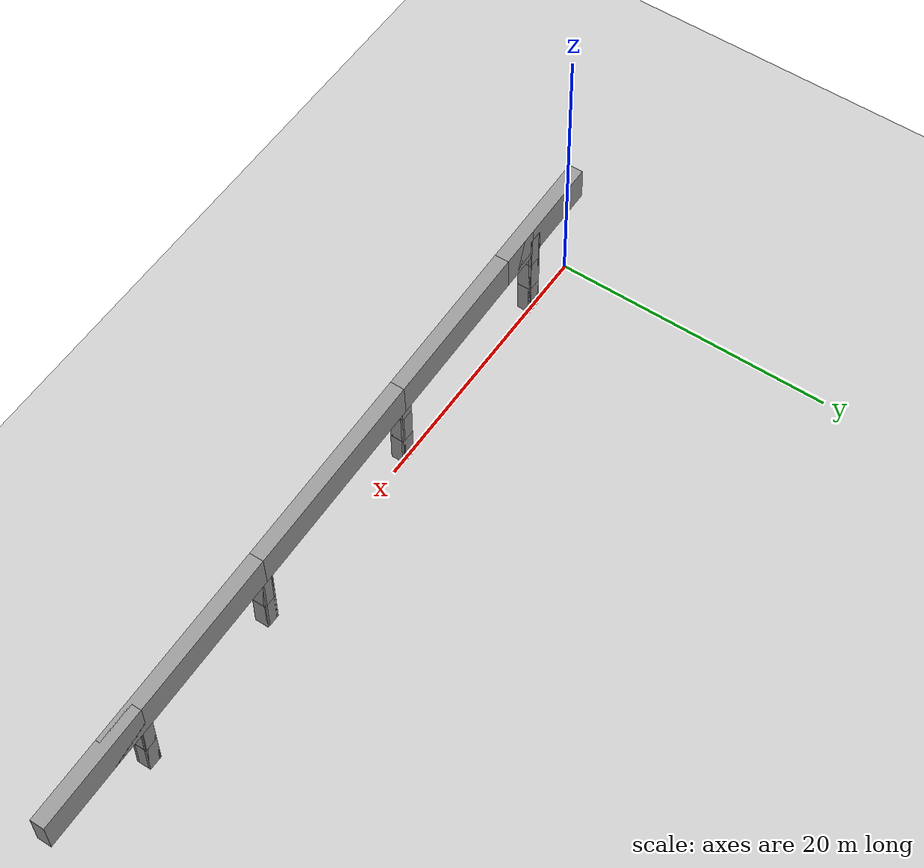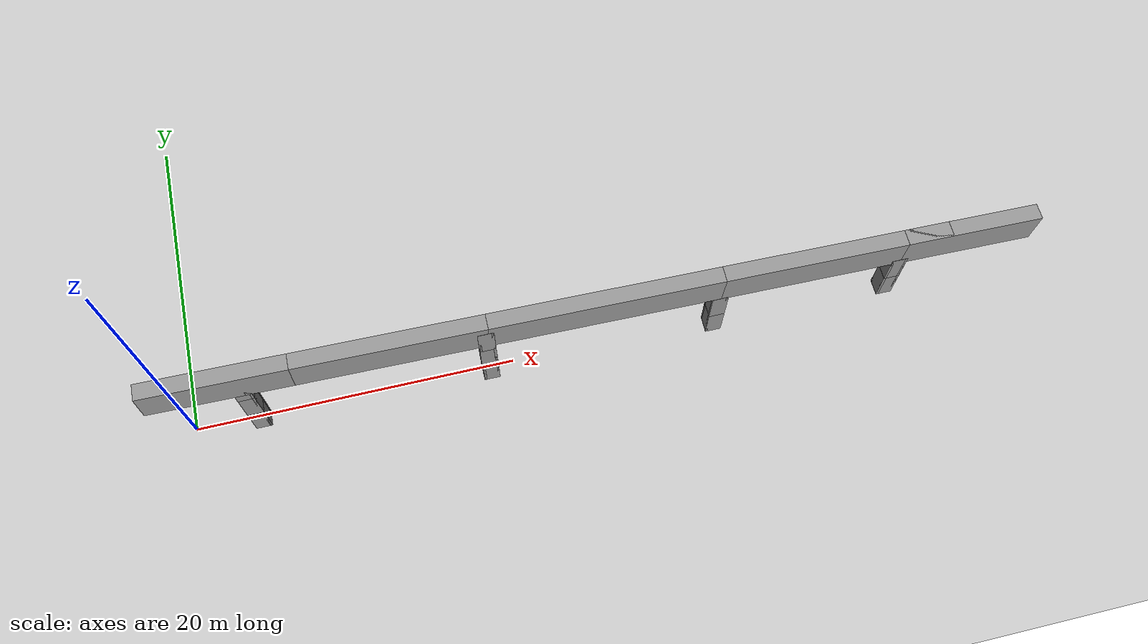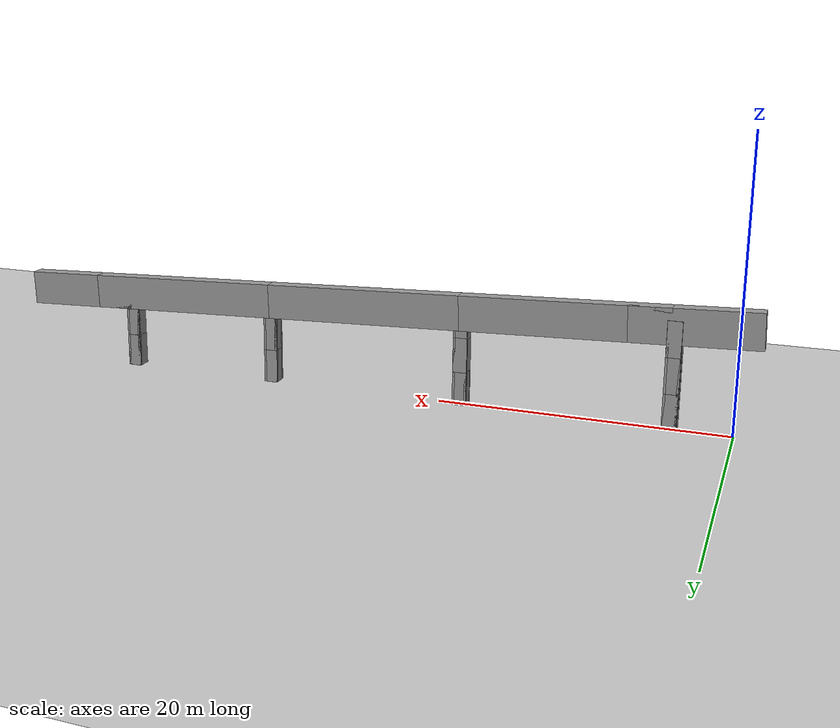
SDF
<sdf version="1.6">
 <world name="default">
  <light name="sun" type="directional">
   <pose>0 0 10 0 -0 0</pose>
   <diffuse>0.8 0.8 0.8 1</diffuse>
   <specular>0.1 0.1 0.1 1</specular>
   <attenuation>
    <range>1000</range>
    <constant>0.9</constant>
    <linear>0.01</linear>
    <quadratic>0.001</quadratic>
   </attenuation>
   <direction>-0.5 0.5 -1</direction>
  </light>
  <model name="ground_plane">
   <static>1</static>
   <link name="link">
    <collision name="collision">
     <geometry><plane><normal>0 0 1</normal><size>100 100</size></plane></geometry>
     <surface><friction><ode><mu>100</mu><mu2>50</mu2></ode></friction></surface>
    </collision>
    <visual name="visual">
     <cast_shadows>0</cast_shadows>
     <geometry><plane><normal>0 0 1</normal><size>100 100</size></plane></geometry>
     <material>
      <script><uri>file://media/materials/scripts/gazebo.material</uri><name>Gazebo/Grey</name></script>
     </material>
    </visual>
   </link>
  </model>
  <gravity>0 0 -9.8</gravity>
  <magnetic_field>6e-06 2.3e-05 -4.2e-05</magnetic_field>
  <atmosphere type="adiabatic"/>
  <physics name="default_physics" default="0" type="ode">
   <max_step_size>0.001</max_step_size>
   <real_time_factor>1</real_time_factor>
   <real_time_update_rate>1000</real_time_update_rate>
  </physics>
  <scene><ambient>0.4 0.4 0.4 1</ambient><background>0.7 0.7 0.7 1</background><shadows>1</shadows></scene>
  <spherical_coordinates>
   <surface_model>EARTH_WGS84</surface_model>
   <latitude_deg>0</latitude_deg>
   <longitude_deg>0</longitude_deg>
   <elevation>0</elevation>
   <heading_deg>0</heading_deg>
  </spherical_coordinates>
  <model name="girder">
   <pose>27.7721 -0.330615 5.01209 0 0.035932 0</pose>
   <link name="Wall_1">
    <collision name="Wall_1_Collision">
     <geometry><box><size>8.65 1 2.5</size></box></geometry>
     <pose>0 0 1.25 0 -0 0</pose>
    </collision>
    <visual name="Wall_1_Visual">
     <pose>0 0 1.25 0 -0 0</pose>
     <geometry><box><size>8.65 1 2.5</size></box></geometry>
     <material>
      <script><uri>file://media/materials/scripts/gazebo.material</uri><name>Gazebo/Grey</name></script>
      <ambient>1 1 1 1</ambient>
     </material>
    </visual>
    <pose>-25 0 0 0 -0 0</pose>
   </link>
   <link name="Wall_3">
    <collision name="Wall_3_Collision">
     <geometry><box><size>14.4 1 2.5</size></box></geometry>
     <pose>0 0 1.25 0 -0 0</pose>
    </collision>
    <visual name="Wall_3_Visual">
     <pose>0 0 1.25 0 -0 0</pose>
     <geometry><box><size>14.4 1 2.5</size></box></geometry>
     <material>
      <script><uri>file://media/materials/scripts/gazebo.material</uri><name>Gazebo/Grey</name></script>
      <ambient>1 1 1 1</ambient>
     </material>
    </visual>
    <pose>-16.35 0 0 0 -0 0</pose>
   </link>
   <link name="Wall_5">
    <collision name="Wall_5_Collision">
     <geometry><box><size>14.4 1 2.5</size></box></geometry>
     <pose>0 0 1.25 0 -0 0</pose>
    </collision>
    <visual name="Wall_5_Visual">
     <pose>0 0 1.25 0 -0 0</pose>
     <geometry><box><size>14.4 1 2.5</size></box></geometry>
     <material>
      <script><uri>file://media/materials/scripts/gazebo.material</uri><name>Gazebo/Grey</name></script>
      <ambient>1 1 1 1</ambient>
     </material>
    </visual>
    <pose>-1.95 0 0 0 -0 0</pose>
   </link>
   <link name="Wall_7">
    <collision name="Wall_7_Collision">
     <geometry><box><size>14.4 1 2.5</size></box></geometry>
     <pose>0 0 1.25 0 -0 0</pose>
    </collision>
    <visual name="Wall_7_Visual">
     <pose>0 0 1.25 0 -0 0</pose>
     <geometry><box><size>14.4 1 2.5</size></box></geometry>
     <material>
      <script><uri>file://media/materials/scripts/gazebo.material</uri><name>Gazebo/Grey</name></script>
      <ambient>1 1 1 1</ambient>
     </material>
    </visual>
    <pose>12.45 0 0 0 -0 0</pose>
   </link>
   <link name="Wall_9">
    <collision name="Wall_9_Collision">
     <geometry><box><size>8.65 1 2.5</size></box></geometry>
     <pose>0 0 1.25 0 -0 0</pose>
    </collision>
    <visual name="Wall_9_Visual">
     <pose>0 0 1.25 0 -0 0</pose>
     <geometry><box><size>8.65 1 2.5</size></box></geometry>
     <material>
      <script><uri>file://media/materials/scripts/gazebo.material</uri><name>Gazebo/Grey</name></script>
      <ambient>1 1 1 1</ambient>
     </material>
    </visual>
    <pose>21.1 0 0 0 -0 0</pose>
   </link>
   <static>1</static>
  </model>
  <model name="column">
   <pose>4.09198 -0.291753 0.01209 0 -0 0</pose>
   <link name="Wall_0">
    <collision name="Wall_0_Collision">
     <geometry><box><size>1 0.15 2.5</size></box></geometry>
     <pose>0 0 1.25 0 -0 0</pose>
    </collision>
    <visual name="Wall_0_Visual">
     <pose>0 0 1.25 0 -0 0</pose>
     <geometry><box><size>1 0.15 2.5</size></box></geometry>
     <material>
      <script><uri>file://media/materials/scripts/gazebo.material</uri><name>Gazebo/Grey</name></script>
      <ambient>1 1 1 1</ambient>
     </material>
    </visual>
    <pose>0 -0.425 0 0 -0 0</pose>
   </link>
   <link name="Wall_1">
    <collision name="Wall_1_Collision">
     <geometry><box><size>1 0.15 2.5</size></box></geometry>
     <pose>0 0 1.25 0 -0 0</pose>
    </collision>
    <visual name="Wall_1_Visual">
     <pose>0 0 1.25 0 -0 0</pose>
     <geometry><box><size>1 0.15 2.5</size></box></geometry>
     <material>
      <script><uri>file://media/materials/scripts/gazebo.material</uri><name>Gazebo/Grey</name></script>
      <ambient>1 1 1 1</ambient>
     </material>
    </visual>
    <pose>0.425 0 0 0 -0 1.5708</pose>
   </link>
   <link name="Wall_2">
    <collision name="Wall_2_Collision">
     <geometry><box><size>1 0.15 2.5</size></box></geometry>
     <pose>0 0 1.25 0 -0 0</pose>
    </collision>
    <visual name="Wall_2_Visual">
     <pose>0 0 1.25 0 -0 0</pose>
     <geometry><box><size>1 0.15 2.5</size></box></geometry>
     <material>
      <script><uri>file://media/materials/scripts/gazebo.material</uri><name>Gazebo/Grey</name></script>
      <ambient>1 1 1 1</ambient>
     </material>
    </visual>
    <pose>0 0.425 0 0 -0 3.14159</pose>
   </link>
   <link name="Wall_3">
    <collision name="Wall_3_Collision">
     <geometry><box><size>1 0.15 2.5</size></box></geometry>
     <pose>0 0 1.25 0 -0 0</pose>
    </collision>
    <visual name="Wall_3_Visual">
     <pose>0 0 1.25 0 -0 0</pose>
     <geometry><box><size>1 0.15 2.5</size></box></geometry>
     <material>
      <script><uri>file://media/materials/scripts/gazebo.material</uri><name>Gazebo/Grey</name></script>
      <ambient>1 1 1 1</ambient>
     </material>
    </visual>
    <pose>-0.425 0 0 0 0 -1.5708</pose>
   </link>
   <static>1</static>
  </model>
  <model name="column_clone">
   <pose>4.09198 -0.291753 2.51209 0 -0 0</pose>
   <link name="Wall_0">
    <collision name="Wall_0_Collision">
     <geometry><box><size>1 0.15 2.5</size></box></geometry>
     <pose>0 0 1.25 0 -0 0</pose>
    </collision>
    <visual name="Wall_0_Visual">
     <pose>0 0 1.25 0 -0 0</pose>
     <geometry><box><size>1 0.15 2.5</size></box></geometry>
     <material>
      <script><uri>file://media/materials/scripts/gazebo.material</uri><name>Gazebo/Grey</name></script>
      <ambient>1 1 1 1</ambient>
     </material>
    </visual>
    <pose>0 -0.425 0 0 -0 0</pose>
   </link>
   <link name="Wall_1">
    <collision name="Wall_1_Collision">
     <geometry><box><size>1 0.15 2.5</size></box></geometry>
     <pose>0 0 1.25 0 -0 0</pose>
    </collision>
    <visual name="Wall_1_Visual">
     <pose>0 0 1.25 0 -0 0</pose>
     <geometry><box><size>1 0.15 2.5</size></box></geometry>
     <material>
      <script><uri>file://media/materials/scripts/gazebo.material</uri><name>Gazebo/Grey</name></script>
      <ambient>1 1 1 1</ambient>
     </material>
    </visual>
    <pose>0.425 0 0 0 -0 1.5708</pose>
   </link>
   <link name="Wall_2">
    <collision name="Wall_2_Collision">
     <geometry><box><size>1 0.15 2.5</size></box></geometry>
     <pose>0 0 1.25 0 -0 0</pose>
    </collision>
    <visual name="Wall_2_Visual">
     <pose>0 0 1.25 0 -0 0</pose>
     <geometry><box><size>1 0.15 2.5</size></box></geometry>
     <material>
      <script><uri>file://media/materials/scripts/gazebo.material</uri><name>Gazebo/Grey</name></script>
      <ambient>1 1 1 1</ambient>
     </material>
    </visual>
    <pose>0 0.425 0 0 -0 3.14159</pose>
   </link>
   <link name="Wall_3">
    <collision name="Wall_3_Collision">
     <geometry><box><size>1 0.15 2.5</size></box></geometry>
     <pose>0 0 1.25 0 -0 0</pose>
    </collision>
    <visual name="Wall_3_Visual">
     <pose>0 0 1.25 0 -0 0</pose>
     <geometry><box><size>1 0.15 2.5</size></box></geometry>
     <material>
      <script><uri>file://media/materials/scripts/gazebo.material</uri><name>Gazebo/Grey</name></script>
      <ambient>1 1 1 1</ambient>
     </material>
    </visual>
    <pose>-0.425 0 0 0 0 -1.5708</pose>
   </link>
   <static>1</static>
  </model>
  <model name="column_clone_0">
   <pose>4.09198 -0.291753 5.01209 0 -0 0</pose>
   <link name="Wall_0">
    <collision name="Wall_0_Collision">
     <geometry><box><size>1 0.15 2.5</size></box></geometry>
     <pose>0 0 1.25 0 -0 0</pose>
    </collision>
    <visual name="Wall_0_Visual">
     <pose>0 0 1.25 0 -0 0</pose>
     <geometry><box><size>1 0.15 2.5</size></box></geometry>
     <material>
      <script><uri>file://media/materials/scripts/gazebo.material</uri><name>Gazebo/Grey</name></script>
      <ambient>1 1 1 1</ambient>
     </material>
    </visual>
    <pose>0 -0.425 0 0 -0 0</pose>
   </link>
   <link name="Wall_1">
    <collision name="Wall_1_Collision">
     <geometry><box><size>1 0.15 2.5</size></box></geometry>
     <pose>0 0 1.25 0 -0 0</pose>
    </collision>
    <visual name="Wall_1_Visual">
     <pose>0 0 1.25 0 -0 0</pose>
     <geometry><box><size>1 0.15 2.5</size></box></geometry>
     <material>
      <script><uri>file://media/materials/scripts/gazebo.material</uri><name>Gazebo/Grey</name></script>
      <ambient>1 1 1 1</ambient>
     </material>
    </visual>
    <pose>0.425 0 0 0 -0 1.5708</pose>
   </link>
   <link name="Wall_2">
    <collision name="Wall_2_Collision">
     <geometry><box><size>1 0.15 2.5</size></box></geometry>
     <pose>0 0 1.25 0 -0 0</pose>
    </collision>
    <visual name="Wall_2_Visual">
     <pose>0 0 1.25 0 -0 0</pose>
     <geometry><box><size>1 0.15 2.5</size></box></geometry>
     <material>
      <script><uri>file://media/materials/scripts/gazebo.material</uri><name>Gazebo/Grey</name></script>
      <ambient>1 1 1 1</ambient>
     </material>
    </visual>
    <pose>0 0.425 0 0 -0 3.14159</pose>
   </link>
   <link name="Wall_3">
    <collision name="Wall_3_Collision">
     <geometry><box><size>1 0.15 2.5</size></box></geometry>
     <pose>0 0 1.25 0 -0 0</pose>
    </collision>
    <visual name="Wall_3_Visual">
     <pose>0 0 1.25 0 -0 0</pose>
     <geometry><box><size>1 0.15 2.5</size></box></geometry>
     <material>
      <script><uri>file://media/materials/scripts/gazebo.material</uri><name>Gazebo/Grey</name></script>
      <ambient>1 1 1 1</ambient>
     </material>
    </visual>
    <pose>-0.425 0 0 0 0 -1.5708</pose>
   </link>
   <static>1</static>
  </model>
  <model name="column_clone_1">
   <pose>18.5085 -0.349596 -0.152594 0 -0 0</pose>
   <link name="Wall_0">
    <collision name="Wall_0_Collision">
     <geometry><box><size>1 0.15 2.5</size></box></geometry>
     <pose>0 0 1.25 0 -0 0</pose>
    </collision>
    <visual name="Wall_0_Visual">
     <pose>0 0 1.25 0 -0 0</pose>
     <geometry><box><size>1 0.15 2.5</size></box></geometry>
     <material>
      <script><uri>file://media/materials/scripts/gazebo.material</uri><name>Gazebo/Grey</name></script>
      <ambient>1 1 1 1</ambient>
     </material>
    </visual>
    <pose>0 -0.425 0 0 -0 0</pose>
   </link>
   <link name="Wall_1">
    <collision name="Wall_1_Collision">
     <geometry><box><size>1 0.15 2.5</size></box></geometry>
     <pose>0 0 1.25 0 -0 0</pose>
    </collision>
    <visual name="Wall_1_Visual">
     <pose>0 0 1.25 0 -0 0</pose>
     <geometry><box><size>1 0.15 2.5</size></box></geometry>
     <material>
      <script><uri>file://media/materials/scripts/gazebo.material</uri><name>Gazebo/Grey</name></script>
      <ambient>1 1 1 1</ambient>
     </material>
    </visual>
    <pose>0.425 0 0 0 -0 1.5708</pose>
   </link>
   <link name="Wall_2">
    <collision name="Wall_2_Collision">
     <geometry><box><size>1 0.15 2.5</size></box></geometry>
     <pose>0 0 1.25 0 -0 0</pose>
    </collision>
    <visual name="Wall_2_Visual">
     <pose>0 0 1.25 0 -0 0</pose>
     <geometry><box><size>1 0.15 2.5</size></box></geometry>
     <material>
      <script><uri>file://media/materials/scripts/gazebo.material</uri><name>Gazebo/Grey</name></script>
      <ambient>1 1 1 1</ambient>
     </material>
    </visual>
    <pose>0 0.425 0 0 -0 3.14159</pose>
   </link>
   <link name="Wall_3">
    <collision name="Wall_3_Collision">
     <geometry><box><size>1 0.15 2.5</size></box></geometry>
     <pose>0 0 1.25 0 -0 0</pose>
    </collision>
    <visual name="Wall_3_Visual">
     <pose>0 0 1.25 0 -0 0</pose>
     <geometry><box><size>1 0.15 2.5</size></box></geometry>
     <material>
      <script><uri>file://media/materials/scripts/gazebo.material</uri><name>Gazebo/Grey</name></script>
      <ambient>1 1 1 1</ambient>
     </material>
    </visual>
    <pose>-0.425 0 0 0 0 -1.5708</pose>
   </link>
   <static>1</static>
  </model>
  <model name="column_clone_2">
   <pose>18.5085 -0.349596 2.33266 0 -0 0</pose>
   <link name="Wall_0">
    <collision name="Wall_0_Collision">
     <geometry><box><size>1 0.15 2.5</size></box></geometry>
     <pose>0 0 1.25 0 -0 0</pose>
    </collision>
    <visual name="Wall_0_Visual">
     <pose>0 0 1.25 0 -0 0</pose>
     <geometry><box><size>1 0.15 2.5</size></box></geometry>
     <material>
      <script><uri>file://media/materials/scripts/gazebo.material</uri><name>Gazebo/Grey</name></script>
      <ambient>1 1 1 1</ambient>
     </material>
    </visual>
    <pose>0 -0.425 0 0 -0 0</pose>
   </link>
   <link name="Wall_1">
    <collision name="Wall_1_Collision">
     <geometry><box><size>1 0.15 2.5</size></box></geometry>
     <pose>0 0 1.25 0 -0 0</pose>
    </collision>
    <visual name="Wall_1_Visual">
     <pose>0 0 1.25 0 -0 0</pose>
     <geometry><box><size>1 0.15 2.5</size></box></geometry>
     <material>
      <script><uri>file://media/materials/scripts/gazebo.material</uri><name>Gazebo/Grey</name></script>
      <ambient>1 1 1 1</ambient>
     </material>
    </visual>
    <pose>0.425 0 0 0 -0 1.5708</pose>
   </link>
   <link name="Wall_2">
    <collision name="Wall_2_Collision">
     <geometry><box><size>1 0.15 2.5</size></box></geometry>
     <pose>0 0 1.25 0 -0 0</pose>
    </collision>
    <visual name="Wall_2_Visual">
     <pose>0 0 1.25 0 -0 0</pose>
     <geometry><box><size>1 0.15 2.5</size></box></geometry>
     <material>
      <script><uri>file://media/materials/scripts/gazebo.material</uri><name>Gazebo/Grey</name></script>
      <ambient>1 1 1 1</ambient>
     </material>
    </visual>
    <pose>0 0.425 0 0 -0 3.14159</pose>
   </link>
   <link name="Wall_3">
    <collision name="Wall_3_Collision">
     <geometry><box><size>1 0.15 2.5</size></box></geometry>
     <pose>0 0 1.25 0 -0 0</pose>
    </collision>
    <visual name="Wall_3_Visual">
     <pose>0 0 1.25 0 -0 0</pose>
     <geometry><box><size>1 0.15 2.5</size></box></geometry>
     <material>
      <script><uri>file://media/materials/scripts/gazebo.material</uri><name>Gazebo/Grey</name></script>
      <ambient>1 1 1 1</ambient>
     </material>
    </visual>
    <pose>-0.425 0 0 0 0 -1.5708</pose>
   </link>
   <static>1</static>
  </model>
  <model name="column_clone_2_clone">
   <pose>18.5085 -0.349596 4.71899 0 -0 0</pose>
   <link name="Wall_0">
    <collision name="Wall_0_Collision">
     <geometry><box><size>1 0.15 2.5</size></box></geometry>
     <pose>0 0 1.25 0 -0 0</pose>
    </collision>
    <visual name="Wall_0_Visual">
     <pose>0 0 1.25 0 -0 0</pose>
     <geometry><box><size>1 0.15 2.5</size></box></geometry>
     <material>
      <script><uri>file://media/materials/scripts/gazebo.material</uri><name>Gazebo/Grey</name></script>
      <ambient>1 1 1 1</ambient>
     </material>
    </visual>
    <pose>0 -0.425 0 0 -0 0</pose>
   </link>
   <link name="Wall_1">
    <collision name="Wall_1_Collision">
     <geometry><box><size>1 0.15 2.5</size></box></geometry>
     <pose>0 0 1.25 0 -0 0</pose>
    </collision>
    <visual name="Wall_1_Visual">
     <pose>0 0 1.25 0 -0 0</pose>
     <geometry><box><size>1 0.15 2.5</size></box></geometry>
     <material>
      <script><uri>file://media/materials/scripts/gazebo.material</uri><name>Gazebo/Grey</name></script>
      <ambient>1 1 1 1</ambient>
     </material>
    </visual>
    <pose>0.425 0 0 0 -0 1.5708</pose>
   </link>
   <link name="Wall_2">
    <collision name="Wall_2_Collision">
     <geometry><box><size>1 0.15 2.5</size></box></geometry>
     <pose>0 0 1.25 0 -0 0</pose>
    </collision>
    <visual name="Wall_2_Visual">
     <pose>0 0 1.25 0 -0 0</pose>
     <geometry><box><size>1 0.15 2.5</size></box></geometry>
     <material>
      <script><uri>file://media/materials/scripts/gazebo.material</uri><name>Gazebo/Grey</name></script>
      <ambient>1 1 1 1</ambient>
     </material>
    </visual>
    <pose>0 0.425 0 0 -0 3.14159</pose>
   </link>
   <link name="Wall_3">
    <collision name="Wall_3_Collision">
     <geometry><box><size>1 0.15 2.5</size></box></geometry>
     <pose>0 0 1.25 0 -0 0</pose>
    </collision>
    <visual name="Wall_3_Visual">
     <pose>0 0 1.25 0 -0 0</pose>
     <geometry><box><size>1 0.15 2.5</size></box></geometry>
     <material>
      <script><uri>file://media/materials/scripts/gazebo.material</uri><name>Gazebo/Grey</name></script>
      <ambient>1 1 1 1</ambient>
     </material>
    </visual>
    <pose>-0.425 0 0 0 0 -1.5708</pose>
   </link>
   <static>1</static>
  </model>
  <model name="column_clone_1_clone">
   <pose>32.9652 -0.347435 -0.101065 0 -0 0</pose>
   <link name="Wall_0">
    <collision name="Wall_0_Collision">
     <geometry><box><size>1 0.15 2.5</size></box></geometry>
     <pose>0 0 1.25 0 -0 0</pose>
    </collision>
    <visual name="Wall_0_Visual">
     <pose>0 0 1.25 0 -0 0</pose>
     <geometry><box><size>1 0.15 2.5</size></box></geometry>
     <material>
      <script><uri>file://media/materials/scripts/gazebo.material</uri><name>Gazebo/Grey</name></script>
      <ambient>1 1 1 1</ambient>
     </material>
    </visual>
    <pose>0 -0.425 0 0 -0 0</pose>
   </link>
   <link name="Wall_1">
    <collision name="Wall_1_Collision">
     <geometry><box><size>1 0.15 2.5</size></box></geometry>
     <pose>0 0 1.25 0 -0 0</pose>
    </collision>
    <visual name="Wall_1_Visual">
     <pose>0 0 1.25 0 -0 0</pose>
     <geometry><box><size>1 0.15 2.5</size></box></geometry>
     <material>
      <script><uri>file://media/materials/scripts/gazebo.material</uri><name>Gazebo/Grey</name></script>
      <ambient>1 1 1 1</ambient>
     </material>
    </visual>
    <pose>0.425 0 0 0 -0 1.5708</pose>
   </link>
   <link name="Wall_2">
    <collision name="Wall_2_Collision">
     <geometry><box><size>1 0.15 2.5</size></box></geometry>
     <pose>0 0 1.25 0 -0 0</pose>
    </collision>
    <visual name="Wall_2_Visual">
     <pose>0 0 1.25 0 -0 0</pose>
     <geometry><box><size>1 0.15 2.5</size></box></geometry>
     <material>
      <script><uri>file://media/materials/scripts/gazebo.material</uri><name>Gazebo/Grey</name></script>
      <ambient>1 1 1 1</ambient>
     </material>
    </visual>
    <pose>0 0.425 0 0 -0 3.14159</pose>
   </link>
   <link name="Wall_3">
    <collision name="Wall_3_Collision">
     <geometry><box><size>1 0.15 2.5</size></box></geometry>
     <pose>0 0 1.25 0 -0 0</pose>
    </collision>
    <visual name="Wall_3_Visual">
     <pose>0 0 1.25 0 -0 0</pose>
     <geometry><box><size>1 0.15 2.5</size></box></geometry>
     <material>
      <script><uri>file://media/materials/scripts/gazebo.material</uri><name>Gazebo/Grey</name></script>
      <ambient>1 1 1 1</ambient>
     </material>
    </visual>
    <pose>-0.425 0 0 0 0 -1.5708</pose>
   </link>
   <static>1</static>
  </model>
  <model name="column_clone_1_clone_clone">
   <pose>32.9652 -0.347435 2.37388 0 -0 0</pose>
   <link name="Wall_0">
    <collision name="Wall_0_Collision">
     <geometry><box><size>1 0.15 2.5</size></box></geometry>
     <pose>0 0 1.25 0 -0 0</pose>
    </collision>
    <visual name="Wall_0_Visual">
     <pose>0 0 1.25 0 -0 0</pose>
     <geometry><box><size>1 0.15 2.5</size></box></geometry>
     <material>
      <script><uri>file://media/materials/scripts/gazebo.material</uri><name>Gazebo/Grey</name></script>
      <ambient>1 1 1 1</ambient>
     </material>
    </visual>
    <pose>0 -0.425 0 0 -0 0</pose>
   </link>
   <link name="Wall_1">
    <collision name="Wall_1_Collision">
     <geometry><box><size>1 0.15 2.5</size></box></geometry>
     <pose>0 0 1.25 0 -0 0</pose>
    </collision>
    <visual name="Wall_1_Visual">
     <pose>0 0 1.25 0 -0 0</pose>
     <geometry><box><size>1 0.15 2.5</size></box></geometry>
     <material>
      <script><uri>file://media/materials/scripts/gazebo.material</uri><name>Gazebo/Grey</name></script>
      <ambient>1 1 1 1</ambient>
     </material>
    </visual>
    <pose>0.425 0 0 0 -0 1.5708</pose>
   </link>
   <link name="Wall_2">
    <collision name="Wall_2_Collision">
     <geometry><box><size>1 0.15 2.5</size></box></geometry>
     <pose>0 0 1.25 0 -0 0</pose>
    </collision>
    <visual name="Wall_2_Visual">
     <pose>0 0 1.25 0 -0 0</pose>
     <geometry><box><size>1 0.15 2.5</size></box></geometry>
     <material>
      <script><uri>file://media/materials/scripts/gazebo.material</uri><name>Gazebo/Grey</name></script>
      <ambient>1 1 1 1</ambient>
     </material>
    </visual>
    <pose>0 0.425 0 0 -0 3.14159</pose>
   </link>
   <link name="Wall_3">
    <collision name="Wall_3_Collision">
     <geometry><box><size>1 0.15 2.5</size></box></geometry>
     <pose>0 0 1.25 0 -0 0</pose>
    </collision>
    <visual name="Wall_3_Visual">
     <pose>0 0 1.25 0 -0 0</pose>
     <geometry><box><size>1 0.15 2.5</size></box></geometry>
     <material>
      <script><uri>file://media/materials/scripts/gazebo.material</uri><name>Gazebo/Grey</name></script>
      <ambient>1 1 1 1</ambient>
     </material>
    </visual>
    <pose>-0.425 0 0 0 0 -1.5708</pose>
   </link>
   <static>1</static>
  </model>
  <model name="column_clone_1_clone_clone_0">
   <pose>44.5018 -0.352435 -0.125718 0 -0 0</pose>
   <link name="Wall_0">
    <collision name="Wall_0_Collision">
     <geometry><box><size>1 0.15 2.5</size></box></geometry>
     <pose>0 0 1.25 0 -0 0</pose>
    </collision>
    <visual name="Wall_0_Visual">
     <pose>0 0 1.25 0 -0 0</pose>
     <geometry><box><size>1 0.15 2.5</size></box></geometry>
     <material>
      <script><uri>file://media/materials/scripts/gazebo.material</uri><name>Gazebo/Grey</name></script>
      <ambient>1 1 1 1</ambient>
     </material>
    </visual>
    <pose>0 -0.425 0 0 -0 0</pose>
   </link>
   <link name="Wall_1">
    <collision name="Wall_1_Collision">
     <geometry><box><size>1 0.15 2.5</size></box></geometry>
     <pose>0 0 1.25 0 -0 0</pose>
    </collision>
    <visual name="Wall_1_Visual">
     <pose>0 0 1.25 0 -0 0</pose>
     <geometry><box><size>1 0.15 2.5</size></box></geometry>
     <material>
      <script><uri>file://media/materials/scripts/gazebo.material</uri><name>Gazebo/Grey</name></script>
      <ambient>1 1 1 1</ambient>
     </material>
    </visual>
    <pose>0.425 0 0 0 -0 1.5708</pose>
   </link>
   <link name="Wall_2">
    <collision name="Wall_2_Collision">
     <geometry><box><size>1 0.15 2.5</size></box></geometry>
     <pose>0 0 1.25 0 -0 0</pose>
    </collision>
    <visual name="Wall_2_Visual">
     <pose>0 0 1.25 0 -0 0</pose>
     <geometry><box><size>1 0.15 2.5</size></box></geometry>
     <material>
      <script><uri>file://media/materials/scripts/gazebo.material</uri><name>Gazebo/Grey</name></script>
      <ambient>1 1 1 1</ambient>
     </material>
    </visual>
    <pose>0 0.425 0 0 -0 3.14159</pose>
   </link>
   <link name="Wall_3">
    <collision name="Wall_3_Collision">
     <geometry><box><size>1 0.15 2.5</size></box></geometry>
     <pose>0 0 1.25 0 -0 0</pose>
    </collision>
    <visual name="Wall_3_Visual">
     <pose>0 0 1.25 0 -0 0</pose>
     <geometry><box><size>1 0.15 2.5</size></box></geometry>
     <material>
      <script><uri>file://media/materials/scripts/gazebo.material</uri><name>Gazebo/Grey</name></script>
      <ambient>1 1 1 1</ambient>
     </material>
    </visual>
    <pose>-0.425 0 0 0 0 -1.5708</pose>
   </link>
   <static>1</static>
  </model>
  <model name="column_clone_1_clone_clone_0_clone">
   <pose>44.5018 -0.352435 2.35813 0 -0 0</pose>
   <link name="Wall_0">
    <collision name="Wall_0_Collision">
     <geometry><box><size>1 0.15 2.5</size></box></geometry>
     <pose>0 0 1.25 0 -0 0</pose>
    </collision>
    <visual name="Wall_0_Visual">
     <pose>0 0 1.25 0 -0 0</pose>
     <geometry><box><size>1 0.15 2.5</size></box></geometry>
     <material>
      <script><uri>file://media/materials/scripts/gazebo.material</uri><name>Gazebo/Grey</name></script>
      <ambient>1 1 1 1</ambient>
     </material>
    </visual>
    <pose>0 -0.425 0 0 -0 0</pose>
   </link>
   <link name="Wall_1">
    <collision name="Wall_1_Collision">
     <geometry><box><size>1 0.15 2.5</size></box></geometry>
     <pose>0 0 1.25 0 -0 0</pose>
    </collision>
    <visual name="Wall_1_Visual">
     <pose>0 0 1.25 0 -0 0</pose>
     <geometry><box><size>1 0.15 2.5</size></box></geometry>
     <material>
      <script><uri>file://media/materials/scripts/gazebo.material</uri><name>Gazebo/Grey</name></script>
      <ambient>1 1 1 1</ambient>
     </material>
    </visual>
    <pose>0.425 0 0 0 -0 1.5708</pose>
   </link>
   <link name="Wall_2">
    <collision name="Wall_2_Collision">
     <geometry><box><size>1 0.15 2.5</size></box></geometry>
     <pose>0 0 1.25 0 -0 0</pose>
    </collision>
    <visual name="Wall_2_Visual">
     <pose>0 0 1.25 0 -0 0</pose>
     <geometry><box><size>1 0.15 2.5</size></box></geometry>
     <material>
      <script><uri>file://media/materials/scripts/gazebo.material</uri><name>Gazebo/Grey</name></script>
      <ambient>1 1 1 1</ambient>
     </material>
    </visual>
    <pose>0 0.425 0 0 -0 3.14159</pose>
   </link>
   <link name="Wall_3">
    <collision name="Wall_3_Collision">
     <geometry><box><size>1 0.15 2.5</size></box></geometry>
     <pose>0 0 1.25 0 -0 0</pose>
    </collision>
    <visual name="Wall_3_Visual">
     <pose>0 0 1.25 0 -0 0</pose>
     <geometry><box><size>1 0.15 2.5</size></box></geometry>
     <material>
      <script><uri>file://media/materials/scripts/gazebo.material</uri><name>Gazebo/Grey</name></script>
      <ambient>1 1 1 1</ambient>
     </material>
    </visual>
    <pose>-0.425 0 0 0 0 -1.5708</pose>
   </link>
   <static>1</static>
  </model>
 </world>
</sdf>
